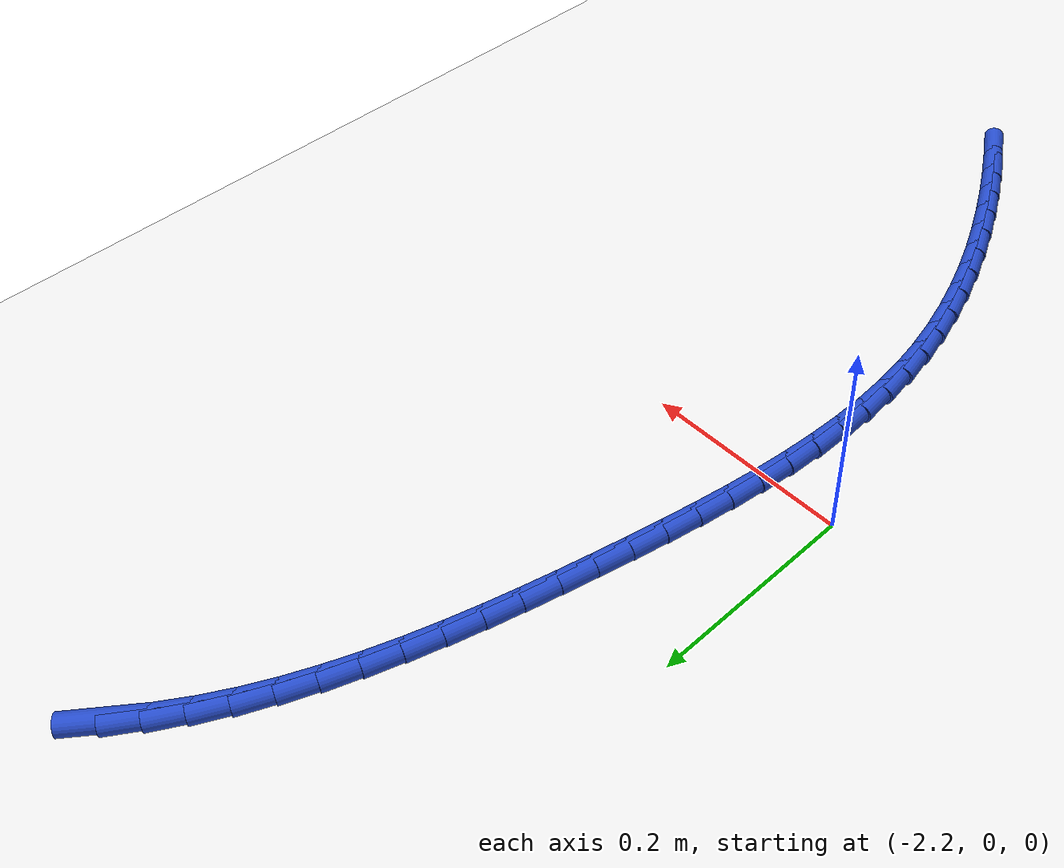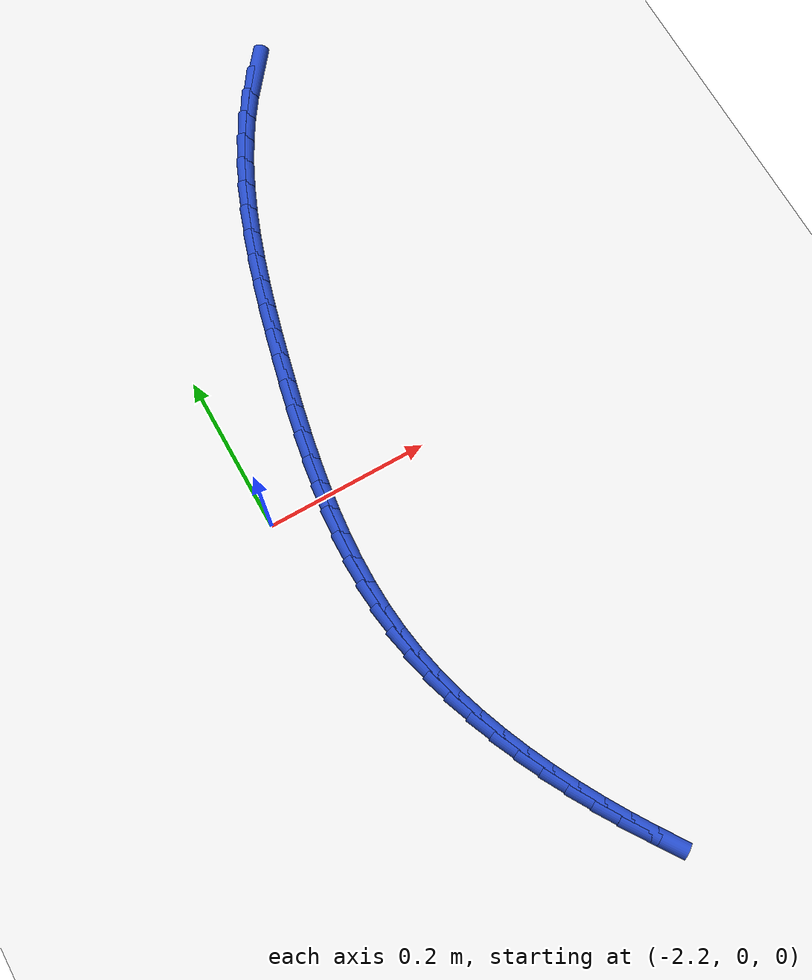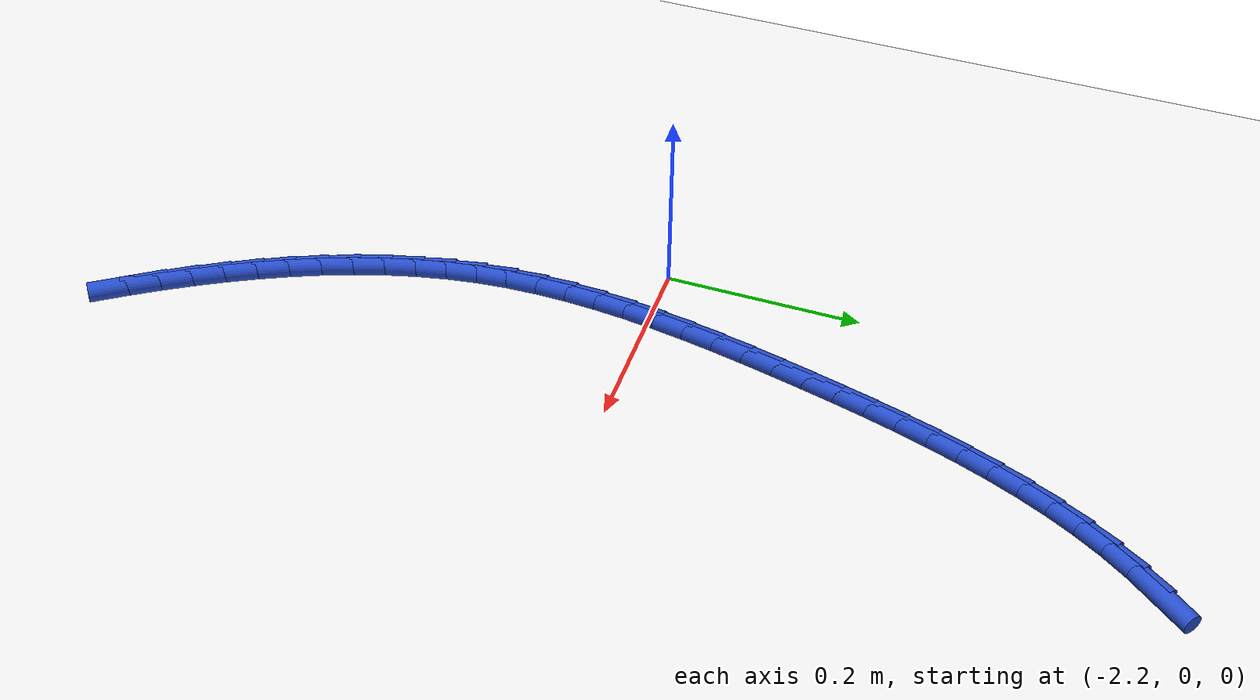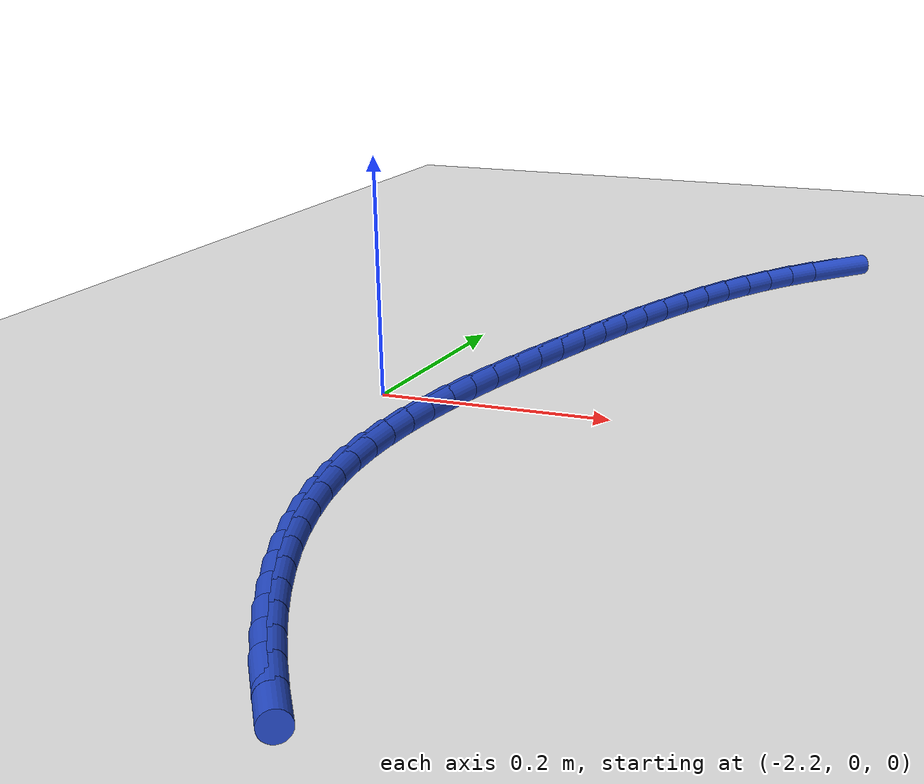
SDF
<sdf version="1.6">
 <world name="default">
  <model name="ground_plane">
   <static>1</static>
   <link name="link">
    <collision name="collision">
     <geometry><plane><normal>0 0 1</normal><size>100 100</size></plane></geometry>
     <surface><friction><ode><mu>100</mu><mu2>50</mu2></ode></friction></surface>
    </collision>
    <visual name="visual">
     <cast_shadows>0</cast_shadows>
     <geometry><plane><normal>0 0 1</normal><size>100 100</size></plane></geometry>
     <material>
      <script><uri>file://media/materials/scripts/gazebo.material</uri><name>Gazebo/WhiteGlow</name></script>
     </material>
    </visual>
   </link>
  </model>
  <model name="line">
   <link name="link_88">
    <pose>-1.943887823120397 0.5322464028142955 0.01 0 1.57 0.9028331234628026</pose>
    <collision name="collision">
     <geometry><cylinder><radius>0.01</radius><length>0.08</length></cylinder></geometry>
    </collision>
    <visual name="visual">
     <material>
      <script><name>Gazebo/Blue</name><uri>file://media/materials/scripts/gazebo.material</uri></script>
     </material>
     <geometry><cylinder><radius>0.01</radius><length>0.08</length></cylinder></geometry>
    </visual>
   </link>
   <link name="link_89">
    <pose>-1.9634630308601322 0.5074345015066688 0.01 0 1.57 0.9706785463097015</pose>
    <collision name="collision">
     <geometry><cylinder><radius>0.01</radius><length>0.08</length></cylinder></geometry>
    </collision>
    <visual name="visual">
     <material>
      <script><name>Gazebo/Blue</name><uri>file://media/materials/scripts/gazebo.material</uri></script>
     </material>
     <geometry><cylinder><radius>0.01</radius><length>0.08</length></cylinder></geometry>
    </visual>
   </link>
   <link name="link_90">
    <pose>-1.981386694455694 0.48124217538149744 0.01 0 1.57 1.0323650958747137</pose>
    <collision name="collision">
     <geometry><cylinder><radius>0.01</radius><length>0.08</length></cylinder></geometry>
    </collision>
    <visual name="visual">
     <material>
      <script><name>Gazebo/Blue</name><uri>file://media/materials/scripts/gazebo.material</uri></script>
     </material>
     <geometry><cylinder><radius>0.01</radius><length>0.08</length></cylinder></geometry>
    </visual>
   </link>
   <link name="link_91">
    <pose>-1.9977779313161437 0.4537999192628612 0.01 0 1.57 1.0878149489069002</pose>
    <collision name="collision">
     <geometry><cylinder><radius>0.01</radius><length>0.08</length></cylinder></geometry>
    </collision>
    <visual name="visual">
     <material>
      <script><name>Gazebo/Blue</name><uri>file://media/materials/scripts/gazebo.material</uri></script>
     </material>
     <geometry><cylinder><radius>0.01</radius><length>0.08</length></cylinder></geometry>
    </visual>
   </link>
   <link name="link_92">
    <pose>-2.0127558588505416 0.4252382279748397 0.01 0 1.57 1.1371343751510827</pose>
    <collision name="collision">
     <geometry><cylinder><radius>0.01</radius><length>0.08</length></cylinder></geometry>
    </collision>
    <visual name="visual">
     <material>
      <script><name>Gazebo/Blue</name><uri>file://media/materials/scripts/gazebo.material</uri></script>
     </material>
     <geometry><cylinder><radius>0.01</radius><length>0.08</length></cylinder></geometry>
    </visual>
   </link>
   <link name="link_93">
    <pose>-2.026439594467947 0.39568759634151357 0.01 0 1.57 1.18054709263582</pose>
    <collision name="collision">
     <geometry><cylinder><radius>0.01</radius><length>0.08</length></cylinder></geometry>
    </collision>
    <visual name="visual">
     <material>
      <script><name>Gazebo/Blue</name><uri>file://media/materials/scripts/gazebo.material</uri></script>
     </material>
     <geometry><cylinder><radius>0.01</radius><length>0.08</length></cylinder></geometry>
    </visual>
   </link>
   <link name="link_94">
    <pose>-2.0389482555774223 0.3652785191869628 0.01 0 1.57 1.2183385876686488</pose>
    <collision name="collision">
     <geometry><cylinder><radius>0.01</radius><length>0.08</length></cylinder></geometry>
    </collision>
    <visual name="visual">
     <material>
      <script><name>Gazebo/Blue</name><uri>file://media/materials/scripts/gazebo.material</uri></script>
     </material>
     <geometry><cylinder><radius>0.01</radius><length>0.08</length></cylinder></geometry>
    </visual>
   </link>
   <link name="link_95">
    <pose>-2.0504009595880293 0.3341414913352671 0.01 0 1.57 1.250813572036491</pose>
    <collision name="collision">
     <geometry><cylinder><radius>0.01</radius><length>0.08</length></cylinder></geometry>
    </collision>
    <visual name="visual">
     <material>
      <script><name>Gazebo/Blue</name><uri>file://media/materials/scripts/gazebo.material</uri></script>
     </material>
     <geometry><cylinder><radius>0.01</radius><length>0.08</length></cylinder></geometry>
    </visual>
   </link>
   <link name="link_96">
    <pose>-2.0609168239088254 0.3024070076105069 0.01 0 1.57 1.2782655465469375</pose>
    <collision name="collision">
     <geometry><cylinder><radius>0.01</radius><length>0.08</length></cylinder></geometry>
    </collision>
    <visual name="visual">
     <material>
      <script><name>Gazebo/Blue</name><uri>file://media/materials/scripts/gazebo.material</uri></script>
     </material>
     <geometry><cylinder><radius>0.01</radius><length>0.08</length></cylinder></geometry>
    </visual>
   </link>
   <link name="link_97">
    <pose>-2.0706149659488746 0.2702055628367623 0.01 0 1.57 1.3009560369707511</pose>
    <collision name="collision">
     <geometry><cylinder><radius>0.01</radius><length>0.08</length></cylinder></geometry>
    </collision>
    <visual name="visual">
     <material>
      <script><name>Gazebo/Blue</name><uri>file://media/materials/scripts/gazebo.material</uri></script>
     </material>
     <geometry><cylinder><radius>0.01</radius><length>0.08</length></cylinder></geometry>
    </visual>
   </link>
   <link name="link_98">
    <pose>-2.079614503117236 0.23766765183811261 0.01 0 1.57 1.3191007911026769</pose>
    <collision name="collision">
     <geometry><cylinder><radius>0.01</radius><length>0.08</length></cylinder></geometry>
    </collision>
    <visual name="visual">
     <material>
      <script><name>Gazebo/Blue</name><uri>file://media/materials/scripts/gazebo.material</uri></script>
     </material>
     <geometry><cylinder><radius>0.01</radius><length>0.08</length></cylinder></geometry>
    </visual>
   </link>
   <link name="link_99">
    <pose>-2.0880345528229713 0.20492376943863894 0.01 0 1.57 1.3328604995513098</pose>
    <collision name="collision">
     <geometry><cylinder><radius>0.01</radius><length>0.08</length></cylinder></geometry>
    </collision>
    <visual name="visual">
     <material>
      <script><name>Gazebo/Blue</name><uri>file://media/materials/scripts/gazebo.material</uri></script>
     </material>
     <geometry><cylinder><radius>0.01</radius><length>0.08</length></cylinder></geometry>
    </visual>
   </link>
   <link name="link_100">
    <pose>-2.095994232475141 0.17210441046242075 0.01 0 1.57 1.3427053833306732</pose>
    <collision name="collision">
     <geometry><cylinder><radius>0.01</radius><length>0.08</length></cylinder></geometry>
    </collision>
    <visual name="visual">
     <material>
      <script><name>Gazebo/Blue</name><uri>file://media/materials/scripts/gazebo.material</uri></script>
     </material>
     <geometry><cylinder><radius>0.01</radius><length>0.08</length></cylinder></geometry>
    </visual>
   </link>
   <link name="link_101">
    <pose>-2.103601118152754 0.13933454920085803 0.01 0 1.57 1.3534930322733978</pose>
    <collision name="collision">
     <geometry><cylinder><radius>0.01</radius><length>0.08</length></cylinder></geometry>
    </collision>
    <visual name="visual">
     <material>
      <script><name>Gazebo/Blue</name><uri>file://media/materials/scripts/gazebo.material</uri></script>
     </material>
     <geometry><cylinder><radius>0.01</radius><length>0.08</length></cylinder></geometry>
    </visual>
   </link>
   <link name="link_102">
    <pose>-2.1108135958848724 0.10666779827883772 0.01 0 1.57 1.3686622511208202</pose>
    <collision name="collision">
     <geometry><cylinder><radius>0.01</radius><length>0.08</length></cylinder></geometry>
    </collision>
    <visual name="visual">
     <material>
      <script><name>Gazebo/Blue</name><uri>file://media/materials/scripts/gazebo.material</uri></script>
     </material>
     <geometry><cylinder><radius>0.01</radius><length>0.08</length></cylinder></geometry>
    </visual>
   </link>
   <link name="link_103">
    <pose>-2.117486150787237 0.07410807168296765 0.01 0 1.57 1.3884070874402872</pose>
    <collision name="collision">
     <geometry><cylinder><radius>0.01</radius><length>0.08</length></cylinder></geometry>
    </collision>
    <visual name="visual">
     <material>
      <script><name>Gazebo/Blue</name><uri>file://media/materials/scripts/gazebo.material</uri></script>
     </material>
     <geometry><cylinder><radius>0.01</radius><length>0.08</length></cylinder></geometry>
    </visual>
   </link>
   <link name="link_104">
    <pose>-2.123471157764074 0.04165827402818458 0.01 0 1.57 1.4128672291207305</pose>
    <collision name="collision">
     <geometry><cylinder><radius>0.01</radius><length>0.08</length></cylinder></geometry>
    </collision>
    <visual name="visual">
     <material>
      <script><name>Gazebo/Blue</name><uri>file://media/materials/scripts/gazebo.material</uri></script>
     </material>
     <geometry><cylinder><radius>0.01</radius><length>0.08</length></cylinder></geometry>
    </visual>
   </link>
   <link name="link_105">
    <pose>-2.128620991719615 0.009321309929425328 0.01 0 1.57 1.442184374614762</pose>
    <collision name="collision">
     <geometry><cylinder><radius>0.01</radius><length>0.08</length></cylinder></geometry>
    </collision>
    <visual name="visual">
     <material>
      <script><name>Gazebo/Blue</name><uri>file://media/materials/scripts/gazebo.material</uri></script>
     </material>
     <geometry><cylinder><radius>0.01</radius><length>0.08</length></cylinder></geometry>
    </visual>
   </link>
   <link name="link_106">
    <pose>-2.132788027558088 -0.02289991599837398 0.01 0 1.57 1.4764860251352918</pose>
    <collision name="collision">
     <geometry><cylinder><radius>0.01</radius><length>0.08</length></cylinder></geometry>
    </collision>
    <visual name="visual">
     <material>
      <script><name>Gazebo/Blue</name><uri>file://media/materials/scripts/gazebo.material</uri></script>
     </material>
     <geometry><cylinder><radius>0.01</radius><length>0.08</length></cylinder></geometry>
    </visual>
   </link>
   <link name="link_107">
    <pose>-2.135824640183722 -0.05500249914027509 0.01 0 1.57 1.5158639252180546</pose>
    <collision name="collision">
     <geometry><cylinder><radius>0.01</radius><length>0.08</length></cylinder></geometry>
    </collision>
    <visual name="visual">
     <material>
      <script><name>Gazebo/Blue</name><uri>file://media/materials/scripts/gazebo.material</uri></script>
     </material>
     <geometry><cylinder><radius>0.01</radius><length>0.08</length></cylinder></geometry>
    </visual>
   </link>
   <link name="link_108">
    <pose>-2.1375832045007455 -0.08698353488134189 0.01 0 1.57 1.5603470331871199</pose>
    <collision name="collision">
     <geometry><cylinder><radius>0.01</radius><length>0.08</length></cylinder></geometry>
    </collision>
    <visual name="visual">
     <material>
      <script><name>Gazebo/Blue</name><uri>file://media/materials/scripts/gazebo.material</uri></script>
     </material>
     <geometry><cylinder><radius>0.01</radius><length>0.08</length></cylinder></geometry>
    </visual>
   </link>
   <link name="link_109">
    <pose>-2.1379160954133885 -0.1188401186066376 0.01 0 1.57 -1.5317226911255108</pose>
    <collision name="collision">
     <geometry><cylinder><radius>0.01</radius><length>0.08</length></cylinder></geometry>
    </collision>
    <visual name="visual">
     <material>
      <script><name>Gazebo/Blue</name><uri>file://media/materials/scripts/gazebo.material</uri></script>
     </material>
     <geometry><cylinder><radius>0.01</radius><length>0.08</length></cylinder></geometry>
    </visual>
   </link>
   <link name="link_110">
    <pose>-2.136675687825879 -0.15056934570122527 0.01 0 1.57 -1.47735317109262</pose>
    <collision name="collision">
     <geometry><cylinder><radius>0.01</radius><length>0.08</length></cylinder></geometry>
    </collision>
    <visual name="visual">
     <material>
      <script><name>Gazebo/Blue</name><uri>file://media/materials/scripts/gazebo.material</uri></script>
     </material>
     <geometry><cylinder><radius>0.01</radius><length>0.08</length></cylinder></geometry>
    </visual>
   </link>
   <link name="link_111">
    <pose>-2.133714356642447 -0.18216831155016824 0.01 0 1.57 -1.4186226235623884</pose>
    <collision name="collision">
     <geometry><cylinder><radius>0.01</radius><length>0.08</length></cylinder></geometry>
    </collision>
    <visual name="visual">
     <material>
      <script><name>Gazebo/Blue</name><uri>file://media/materials/scripts/gazebo.material</uri></script>
     </material>
     <geometry><cylinder><radius>0.01</radius><length>0.08</length></cylinder></geometry>
    </visual>
   </link>
   <link name="link_112">
    <pose>-2.128888917167349 -0.21363323906952036 0.01 0 1.57 -1.3598478080727638</pose>
    <collision name="collision">
     <geometry><cylinder><radius>0.01</radius><length>0.08</length></cylinder></geometry>
    </collision>
    <visual name="visual">
     <material>
      <script><name>Gazebo/Blue</name><uri>file://media/materials/scripts/gazebo.material</uri></script>
     </material>
     <geometry><cylinder><radius>0.01</radius><length>0.08</length></cylinder></geometry>
    </visual>
   </link>
   <link name="link_113">
    <pose>-2.1221861787322687 -0.24493480938638082 0.01 0 1.57 -1.3054659218504105</pose>
    <collision name="collision">
     <geometry><cylinder><radius>0.01</radius><length>0.08</length></cylinder></geometry>
    </collision>
    <visual name="visual">
     <material>
      <script><name>Gazebo/Blue</name><uri>file://media/materials/scripts/gazebo.material</uri></script>
     </material>
     <geometry><cylinder><radius>0.01</radius><length>0.08</length></cylinder></geometry>
    </visual>
   </link>
   <link name="link_114">
    <pose>-2.113740615146995 -0.2760146898722927 0.01 0 1.57 -1.2554935088515984</pose>
    <collision name="collision">
     <geometry><cylinder><radius>0.01</radius><length>0.08</length></cylinder></geometry>
    </collision>
    <visual name="visual">
     <material>
      <script><name>Gazebo/Blue</name><uri>file://media/materials/scripts/gazebo.material</uri></script>
     </material>
     <geometry><cylinder><radius>0.01</radius><length>0.08</length></cylinder></geometry>
    </visual>
   </link>
   <link name="link_115">
    <pose>-2.1036946927179674 -0.3068129774984759 0.01 0 1.57 -1.2096524556178667</pose>
    <collision name="collision">
     <geometry><cylinder><radius>0.01</radius><length>0.08</length></cylinder></geometry>
    </collision>
    <visual name="visual">
     <material>
      <script><name>Gazebo/Blue</name><uri>file://media/materials/scripts/gazebo.material</uri></script>
     </material>
     <geometry><cylinder><radius>0.01</radius><length>0.08</length></cylinder></geometry>
    </visual>
   </link>
   <link name="link_116">
    <pose>-2.092190877751624 -0.33726976923615054 0.01 0 1.57 -1.1676385067434754</pose>
    <collision name="collision">
     <geometry><cylinder><radius>0.01</radius><length>0.08</length></cylinder></geometry>
    </collision>
    <visual name="visual">
     <material>
      <script><name>Gazebo/Blue</name><uri>file://media/materials/scripts/gazebo.material</uri></script>
     </material>
     <geometry><cylinder><radius>0.01</radius><length>0.08</length></cylinder></geometry>
    </visual>
   </link>
   <link name="link_117">
    <pose>-2.079371636554402 -0.3673251620565366 0.01 0 1.57 -1.1291413480186376</pose>
    <collision name="collision">
     <geometry><cylinder><radius>0.01</radius><length>0.08</length></cylinder></geometry>
    </collision>
    <visual name="visual">
     <material>
      <script><name>Gazebo/Blue</name><uri>file://media/materials/scripts/gazebo.material</uri></script>
     </material>
     <geometry><cylinder><radius>0.01</radius><length>0.08</length></cylinder></geometry>
    </visual>
   </link>
   <link name="link_118">
    <pose>-2.0653794354327415 -0.3969192529308541 0.01 0 1.57 -1.0938582066637794</pose>
    <collision name="collision">
     <geometry><cylinder><radius>0.01</radius><length>0.08</length></cylinder></geometry>
    </collision>
    <visual name="visual">
     <material>
      <script><name>Gazebo/Blue</name><uri>file://media/materials/scripts/gazebo.material</uri></script>
     </material>
     <geometry><cylinder><radius>0.01</radius><length>0.08</length></cylinder></geometry>
    </visual>
   </link>
   <link name="link_119">
    <pose>-2.0503567406930796 -0.42599213883032383 0.01 0 1.57 -1.061499670660772</pose>
    <collision name="collision">
     <geometry><cylinder><radius>0.01</radius><length>0.08</length></cylinder></geometry>
    </collision>
    <visual name="visual">
     <material>
      <script><name>Gazebo/Blue</name><uri>file://media/materials/scripts/gazebo.material</uri></script>
     </material>
     <geometry><cylinder><radius>0.01</radius><length>0.08</length></cylinder></geometry>
    </visual>
   </link>
   <link name="link_120">
    <pose>-2.0344457332845742 -0.4544842431752538 0.01 0 1.57 -1.0315529008597257</pose>
    <collision name="collision">
     <geometry><cylinder><radius>0.01</radius><length>0.08</length></cylinder></geometry>
    </collision>
    <visual name="visual">
     <material>
      <script><name>Gazebo/Blue</name><uri>file://media/materials/scripts/gazebo.material</uri></script>
     </material>
     <geometry><cylinder><radius>0.01</radius><length>0.08</length></cylinder></geometry>
    </visual>
   </link>
   <link name="link_121">
    <pose>-2.0177588180625055 -0.4823700532749815 0.01 0 1.57 -1.0034930614926836</pose>
    <collision name="collision">
     <geometry><cylinder><radius>0.01</radius><length>0.08</length></cylinder></geometry>
    </collision>
    <visual name="visual">
     <material>
      <script><name>Gazebo/Blue</name><uri>file://media/materials/scripts/gazebo.material</uri></script>
     </material>
     <geometry><cylinder><radius>0.01</radius><length>0.08</length></cylinder></geometry>
    </visual>
   </link>
   <link name="link_122">
    <pose>-2.0003529647975498 -0.5096874742456885 0.01 0 1.57 -0.9773539752581167</pose>
    <collision name="collision">
     <geometry><cylinder><radius>0.01</radius><length>0.08</length></cylinder></geometry>
    </collision>
    <visual name="visual">
     <material>
      <script><name>Gazebo/Blue</name><uri>file://media/materials/scripts/gazebo.material</uri></script>
     </material>
     <geometry><cylinder><radius>0.01</radius><length>0.08</length></cylinder></geometry>
    </visual>
   </link>
  </model>
 </world>
</sdf>
